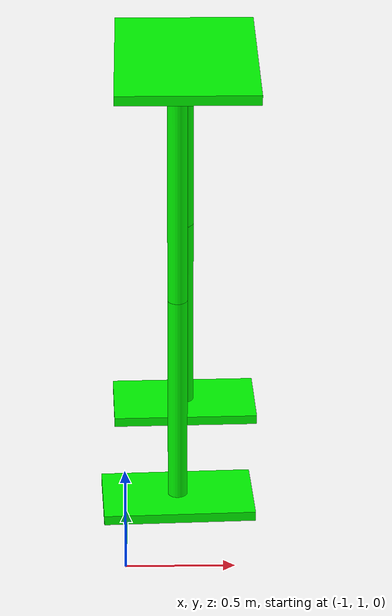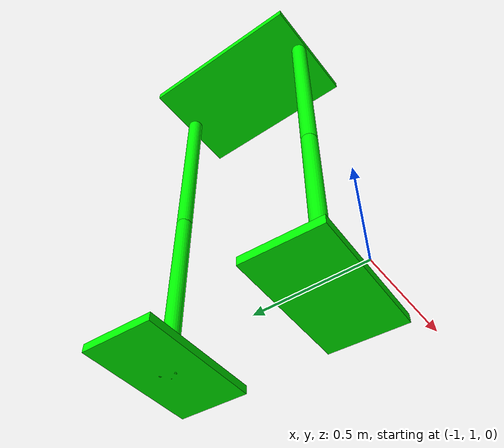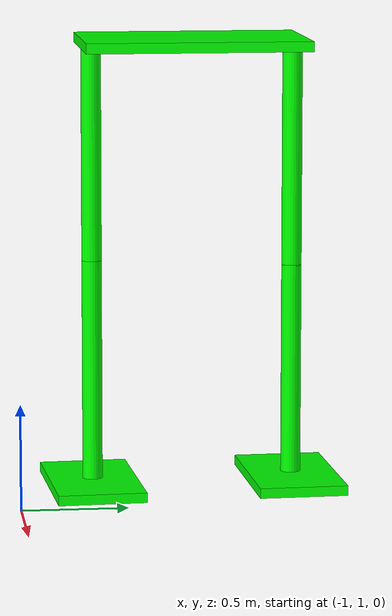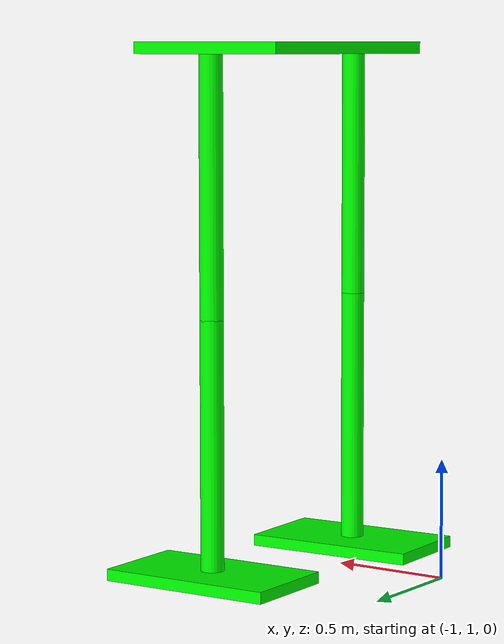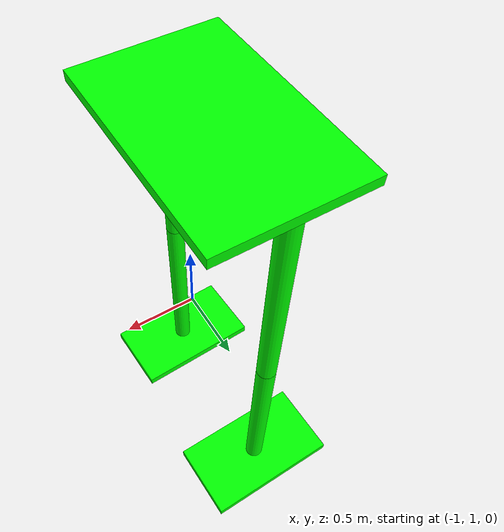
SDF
<?xml version='1.0'?>
<sdf version='1.6'>
  <model name='HumanoidRobot'>
    <model name='HumanoidRobot'>
      <link name='link_0'>
        <pose frame=''>0.019712 -0.002813 1.14058 0 -0 0</pose>
        <inertial>
          <mass>0.029622</mass>
          <inertia>
            <ixx>0.00247368</ixx>
            <ixy>0</ixy>
            <ixz>0</ixz>
            <iyy>0.00103721</iyy>
            <iyz>0</iyz>
            <izz>0.00350053</izz>
          </inertia>
          <pose frame=''>0 0 0 0 -0 0</pose>
        </inertial>
        <visual name='visual'>
          <pose frame=''>0 0 0 0 -0 0</pose>
          <geometry>
            <box>
              <size>0.64659 1 0.045816</size>
            </box>
          </geometry>
          <material>
            <lighting>1</lighting>
            <script>
              <uri>file://media/materials/scripts/gazebo.material</uri>
              <name>Gazebo/Grey</name>
            </script>
            <shader type='pixel'/>
            <ambient>0 1 0 1</ambient>
            <diffuse>0 1 0 1</diffuse>
            <specular>0.01 0.01 0.01 1</specular>
            <emissive>0 0 0 1</emissive>
          </material>
          <transparency>0</transparency>
          <cast_shadows>1</cast_shadows>
        </visual>
        <collision name='collision'>
          <laser_retro>0</laser_retro>
          <max_contacts>10</max_contacts>
          <pose frame=''>0 0 0 0 -0 0</pose>
          <geometry>
            <box>
              <size>0.64659 1 0.045816</size>
            </box>
          </geometry>
          <surface>
            <friction>
              <ode>
                <mu>1</mu>
                <mu2>1</mu2>
                <fdir1>0 0 0</fdir1>
                <slip1>0</slip1>
                <slip2>0</slip2>
              </ode>
              <torsional>
                <coefficient>1</coefficient>
                <patch_radius>0</patch_radius>
                <surface_radius>0</surface_radius>
                <use_patch_radius>1</use_patch_radius>
                <ode>
                  <slip>0</slip>
                </ode>
              </torsional>
            </friction>
            <bounce>
              <restitution_coefficient>0</restitution_coefficient>
              <threshold>1e+06</threshold>
            </bounce>
            <contact>
              <collide_without_contact>0</collide_without_contact>
              <collide_without_contact_bitmask>1</collide_without_contact_bitmask>
              <collide_bitmask>1</collide_bitmask>
              <ode>
                <soft_cfm>0</soft_cfm>
                <soft_erp>0.2</soft_erp>
                <kp>1e+13</kp>
                <kd>1</kd>
                <max_vel>0.01</max_vel>
                <min_depth>0</min_depth>
              </ode>
              <bullet>
                <split_impulse>1</split_impulse>
                <split_impulse_penetration_threshold>-0.01</split_impulse_penetration_threshold>
                <soft_cfm>0</soft_cfm>
                <soft_erp>0.2</soft_erp>
                <kp>1e+13</kp>
                <kd>1</kd>
              </bullet>
            </contact>
          </surface>
        </collision>
      </link>
      <link name='link_1'>
        <pose frame=''>-0.026288 -0.45114 0.657015 0 -0 0</pose>
        <inertial>
          <mass>0.00813444</mass>
          <inertia>
            <ixx>0.00068201</ixx>
            <ixy>0</ixy>
            <ixz>0</ixz>
            <iyy>0.00068201</iyy>
            <iyz>0</iyz>
            <izz>8.28e-06</izz>
          </inertia>
          <pose frame=''>0 0 0 0 -0 0</pose>
        </inertial>
        <gravity>1</gravity>
        <self_collide>0</self_collide>
        <kinematic>0</kinematic>
        <visual name='visual'>
          <pose frame=''>0 0 0 0 -0 0</pose>
          <geometry>
            <cylinder>
              <radius>0.0451095</radius>
              <length>1</length>
            </cylinder>
          </geometry>
          <material>
            <lighting>1</lighting>
            <script>
              <uri>file://media/materials/scripts/gazebo.material</uri>
              <name>Gazebo/Grey</name>
            </script>
            <shader type='pixel'>
              <normal_map>__default__</normal_map>
            </shader>
            <ambient>0 1 0 1</ambient>
            <diffuse>0 1 0 1</diffuse>
            <specular>0.01 0.01 0.01 1</specular>
            <emissive>0 0 0 1</emissive>
          </material>
          <transparency>0</transparency>
          <cast_shadows>1</cast_shadows>
        </visual>
        <collision name='collision'>
          <laser_retro>0</laser_retro>
          <max_contacts>10</max_contacts>
          <pose frame=''>0 0 0 0 -0 0</pose>
          <geometry>
            <cylinder>
              <radius>0.045109</radius>
              <length>1</length>
            </cylinder>
          </geometry>
          <surface>
            <friction>
              <ode>
                <mu>1</mu>
                <mu2>1</mu2>
                <fdir1>0 0 0</fdir1>
                <slip1>0</slip1>
                <slip2>0</slip2>
              </ode>
              <torsional>
                <coefficient>1</coefficient>
                <patch_radius>0</patch_radius>
                <surface_radius>0</surface_radius>
                <use_patch_radius>1</use_patch_radius>
                <ode>
                  <slip>0</slip>
                </ode>
              </torsional>
            </friction>
            <bounce>
              <restitution_coefficient>0</restitution_coefficient>
              <threshold>1e+06</threshold>
            </bounce>
            <contact>
              <collide_without_contact>0</collide_without_contact>
              <collide_without_contact_bitmask>1</collide_without_contact_bitmask>
              <collide_bitmask>1</collide_bitmask>
              <ode>
                <soft_cfm>0</soft_cfm>
                <soft_erp>0.2</soft_erp>
                <kp>1e+13</kp>
                <kd>1</kd>
                <max_vel>0.01</max_vel>
                <min_depth>0</min_depth>
              </ode>
              <bullet>
                <split_impulse>1</split_impulse>
                <split_impulse_penetration_threshold>-0.01</split_impulse_penetration_threshold>
                <soft_cfm>0</soft_cfm>
                <soft_erp>0.2</soft_erp>
                <kp>1e+13</kp>
                <kd>1</kd>
              </bullet>
            </contact>
          </surface>
        </collision>
      </link>
      <link name='link_1_clone'>
        <pose frame=''>0.019712 0.452077 0.626646 0 -0 0</pose>
        <inertial>
          <mass>0.00813444</mass>
          <inertia>
            <ixx>0.000682008</ixx>
            <ixy>0</ixy>
            <ixz>0</ixz>
            <iyy>0.000682008</iyy>
            <iyz>0</iyz>
            <izz>8.27625e-06</izz>
          </inertia>
          <pose frame=''>0 0 0 0 -0 0</pose>
        </inertial>
        <visual name='visual'>
          <pose frame=''>0 0 0 0 -0 0</pose>
          <geometry>
            <cylinder>
              <radius>0.0451095</radius>
              <length>1</length>
            </cylinder>
          </geometry>
          <material>
            <lighting>1</lighting>
            <script>
              <uri>file://media/materials/scripts/gazebo.material</uri>
              <name>Gazebo/Grey</name>
            </script>
            <shader type='pixel'/>
            <ambient>0 1 0 1</ambient>
            <diffuse>0 1 0 1</diffuse>
            <specular>0.01 0.01 0.01 1</specular>
            <emissive>0 0 0 1</emissive>
          </material>
          <transparency>0</transparency>
          <cast_shadows>1</cast_shadows>
        </visual>
        <collision name='collision'>
          <laser_retro>0</laser_retro>
          <max_contacts>10</max_contacts>
          <pose frame=''>0 0 0 0 -0 0</pose>
          <geometry>
            <cylinder>
              <radius>0.045109</radius>
              <length>1</length>
            </cylinder>
          </geometry>
          <surface>
            <friction>
              <ode>
                <mu>1</mu>
                <mu2>1</mu2>
                <fdir1>0 0 0</fdir1>
                <slip1>0</slip1>
                <slip2>0</slip2>
              </ode>
              <torsional>
                <coefficient>1</coefficient>
                <patch_radius>0</patch_radius>
                <surface_radius>0</surface_radius>
                <use_patch_radius>1</use_patch_radius>
                <ode>
                  <slip>0</slip>
                </ode>
              </torsional>
            </friction>
            <bounce>
              <restitution_coefficient>0</restitution_coefficient>
              <threshold>1e+06</threshold>
            </bounce>
            <contact>
              <collide_without_contact>0</collide_without_contact>
              <collide_without_contact_bitmask>1</collide_without_contact_bitmask>
              <collide_bitmask>1</collide_bitmask>
              <ode>
                <soft_cfm>0</soft_cfm>
                <soft_erp>0.2</soft_erp>
                <kp>1e+13</kp>
                <kd>1</kd>
                <max_vel>0.01</max_vel>
                <min_depth>0</min_depth>
              </ode>
              <bullet>
                <split_impulse>1</split_impulse>
                <split_impulse_penetration_threshold>-0.01</split_impulse_penetration_threshold>
                <soft_cfm>0</soft_cfm>
                <soft_erp>0.2</soft_erp>
                <kp>1e+13</kp>
                <kd>1</kd>
              </bullet>
            </contact>
          </surface>
        </collision>
      </link>
      <link name='link_1_clone_0'>
        <pose frame=''>0.019712 0.452077 -0.369133 0 -0 0</pose>
        <inertial>
          <mass>0.00813444</mass>
          <inertia>
            <ixx>0.00068201</ixx>
            <ixy>0</ixy>
            <ixz>0</ixz>
            <iyy>0.00068201</iyy>
            <iyz>0</iyz>
            <izz>8.28e-06</izz>
          </inertia>
          <pose frame=''>0 0 0 0 -0 0</pose>
        </inertial>
        <self_collide>0</self_collide>
        <kinematic>0</kinematic>
        <visual name='visual'>
          <pose frame=''>0 0 0 0 -0 0</pose>
          <geometry>
            <cylinder>
              <radius>0.0451095</radius>
              <length>1</length>
            </cylinder>
          </geometry>
          <material>
            <lighting>1</lighting>
            <script>
              <uri>file://media/materials/scripts/gazebo.material</uri>
              <name>Gazebo/Grey</name>
            </script>
            <shader type='pixel'>
              <normal_map>__default__</normal_map>
            </shader>
            <ambient>0 1 0 1</ambient>
            <diffuse>0 1 0 1</diffuse>
            <specular>0.01 0.01 0.01 1</specular>
            <emissive>0 0 0 1</emissive>
          </material>
          <transparency>0</transparency>
          <cast_shadows>1</cast_shadows>
        </visual>
        <collision name='collision'>
          <laser_retro>0</laser_retro>
          <max_contacts>10</max_contacts>
          <pose frame=''>0 0 0 0 -0 0</pose>
          <geometry>
            <cylinder>
              <radius>0.045109</radius>
              <length>1</length>
            </cylinder>
          </geometry>
          <surface>
            <friction>
              <ode>
                <mu>1</mu>
                <mu2>1</mu2>
                <fdir1>0 0 0</fdir1>
                <slip1>0</slip1>
                <slip2>0</slip2>
              </ode>
              <torsional>
                <coefficient>1</coefficient>
                <patch_radius>0</patch_radius>
                <surface_radius>0</surface_radius>
                <use_patch_radius>1</use_patch_radius>
                <ode>
                  <slip>0</slip>
                </ode>
              </torsional>
            </friction>
            <bounce>
              <restitution_coefficient>0</restitution_coefficient>
              <threshold>1e+06</threshold>
            </bounce>
            <contact>
              <collide_without_contact>0</collide_without_contact>
              <collide_without_contact_bitmask>1</collide_without_contact_bitmask>
              <collide_bitmask>1</collide_bitmask>
              <ode>
                <soft_cfm>0</soft_cfm>
                <soft_erp>0.2</soft_erp>
                <kp>1e+13</kp>
                <kd>1</kd>
                <max_vel>0.01</max_vel>
                <min_depth>0</min_depth>
              </ode>
              <bullet>
                <split_impulse>1</split_impulse>
                <split_impulse_penetration_threshold>-0.01</split_impulse_penetration_threshold>
                <soft_cfm>0</soft_cfm>
                <soft_erp>0.2</soft_erp>
                <kp>1e+13</kp>
                <kd>1</kd>
              </bullet>
            </contact>
          </surface>
        </collision>
      </link>
      <link name='link_1_clone_0_clone'>
        <pose frame=''>-0.026288 -0.45114 -0.342985 0 -0 0</pose>
        <inertial>
          <mass>0.00813444</mass>
          <inertia>
            <ixx>0.00068201</ixx>
            <ixy>0</ixy>
            <ixz>0</ixz>
            <iyy>0.00068201</iyy>
            <iyz>0</iyz>
            <izz>8.28e-06</izz>
          </inertia>
          <pose frame=''>0 0 0 0 -0 0</pose>
        </inertial>
        <self_collide>0</self_collide>
        <kinematic>0</kinematic>
        <visual name='visual'>
          <pose frame=''>0 0 0 0 -0 0</pose>
          <geometry>
            <cylinder>
              <radius>0.0451095</radius>
              <length>1</length>
            </cylinder>
          </geometry>
          <material>
            <lighting>1</lighting>
            <script>
              <uri>file://media/materials/scripts/gazebo.material</uri>
              <name>Gazebo/Grey</name>
            </script>
            <shader type='pixel'>
              <normal_map>__default__</normal_map>
            </shader>
            <ambient>0 1 0 1</ambient>
            <diffuse>0 1 0 1</diffuse>
            <specular>0.01 0.01 0.01 1</specular>
            <emissive>0 0 0 1</emissive>
          </material>
          <transparency>0</transparency>
          <cast_shadows>1</cast_shadows>
        </visual>
        <collision name='collision'>
          <laser_retro>0</laser_retro>
          <max_contacts>10</max_contacts>
          <pose frame=''>0 0 0 0 -0 0</pose>
          <geometry>
            <cylinder>
              <radius>0.045109</radius>
              <length>1</length>
            </cylinder>
          </geometry>
          <surface>
            <friction>
              <ode>
                <mu>1</mu>
                <mu2>1</mu2>
                <fdir1>0 0 0</fdir1>
                <slip1>0</slip1>
                <slip2>0</slip2>
              </ode>
              <torsional>
                <coefficient>1</coefficient>
                <patch_radius>0</patch_radius>
                <surface_radius>0</surface_radius>
                <use_patch_radius>1</use_patch_radius>
                <ode>
                  <slip>0</slip>
                </ode>
              </torsional>
            </friction>
            <bounce>
              <restitution_coefficient>0</restitution_coefficient>
              <threshold>1e+06</threshold>
            </bounce>
            <contact>
              <collide_without_contact>0</collide_without_contact>
              <collide_without_contact_bitmask>1</collide_without_contact_bitmask>
              <collide_bitmask>1</collide_bitmask>
              <ode>
                <soft_cfm>0</soft_cfm>
                <soft_erp>0.2</soft_erp>
                <kp>1e+13</kp>
                <kd>1</kd>
                <max_vel>0.01</max_vel>
                <min_depth>0</min_depth>
              </ode>
              <bullet>
                <split_impulse>1</split_impulse>
                <split_impulse_penetration_threshold>-0.01</split_impulse_penetration_threshold>
                <soft_cfm>0</soft_cfm>
                <soft_erp>0.2</soft_erp>
                <kp>1e+13</kp>
                <kd>1</kd>
              </bullet>
            </contact>
          </surface>
        </collision>
      </link>
      <link name='link_2'>
        <pose frame=''>0.019713 0.452077 -0.846646 0 0 -1.54386</pose>
        <inertial>
          <mass>0.0125002</mass>
          <inertia>
            <ixx>0.000510703</ixx>
            <ixy>0</ixy>
            <ixz>0</ixz>
            <iyy>0.000166892</iyy>
            <iyz>0</iyz>
            <izz>0.000673381</izz>
          </inertia>
          <pose frame=''>0 0 0 0 -0 0</pose>
        </inertial>
        <visual name='visual'>
          <pose frame=''>0 0 0 0 -0 0</pose>
          <geometry>
            <box>
              <size>0.397733 0.698746 0.044974</size>
            </box>
          </geometry>
          <material>
            <lighting>1</lighting>
            <script>
              <uri>file://media/materials/scripts/gazebo.material</uri>
              <name>Gazebo/Grey</name>
            </script>
            <shader type='pixel'/>
            <ambient>0 1 0 1</ambient>
            <diffuse>0 1 0 1</diffuse>
            <specular>0.01 0.01 0.01 1</specular>
            <emissive>0 0 0 1</emissive>
          </material>
          <transparency>0</transparency>
          <cast_shadows>1</cast_shadows>
        </visual>
        <collision name='collision'>
          <laser_retro>0</laser_retro>
          <max_contacts>10</max_contacts>
          <pose frame=''>0 0 0 0 -0 0</pose>
          <geometry>
            <box>
              <size>0.397733 0.698746 0.044974</size>
            </box>
          </geometry>
          <surface>
            <friction>
              <ode>
                <mu>1</mu>
                <mu2>1</mu2>
                <fdir1>0 0 0</fdir1>
                <slip1>0</slip1>
                <slip2>0</slip2>
              </ode>
              <torsional>
                <coefficient>1</coefficient>
                <patch_radius>0</patch_radius>
                <surface_radius>0</surface_radius>
                <use_patch_radius>1</use_patch_radius>
                <ode>
                  <slip>0</slip>
                </ode>
              </torsional>
            </friction>
            <bounce>
              <restitution_coefficient>0</restitution_coefficient>
              <threshold>1e+06</threshold>
            </bounce>
            <contact>
              <collide_without_contact>0</collide_without_contact>
              <collide_without_contact_bitmask>1</collide_without_contact_bitmask>
              <collide_bitmask>1</collide_bitmask>
              <ode>
                <soft_cfm>0</soft_cfm>
                <soft_erp>0.2</soft_erp>
                <kp>1e+13</kp>
                <kd>1</kd>
                <max_vel>0.01</max_vel>
                <min_depth>0</min_depth>
              </ode>
              <bullet>
                <split_impulse>1</split_impulse>
                <split_impulse_penetration_threshold>-0.01</split_impulse_penetration_threshold>
                <soft_cfm>0</soft_cfm>
                <soft_erp>0.2</soft_erp>
                <kp>1e+13</kp>
                <kd>1</kd>
              </bullet>
            </contact>
          </surface>
        </collision>
      </link>
      <link name='link_2_clone'>
        <pose frame=''>-0.026288 -0.45114 -0.865472 0 0 -1.52798</pose>
        <inertial>
          <mass>0.0125002</mass>
          <inertia>
            <ixx>0.000510703</ixx>
            <ixy>0</ixy>
            <ixz>0</ixz>
            <iyy>0.000166892</iyy>
            <iyz>0</iyz>
            <izz>0.000673381</izz>
          </inertia>
          <pose frame=''>0 0 0 0 -0 0</pose>
        </inertial>
        <visual name='visual'>
          <pose frame=''>0 0 0 0 -0 0</pose>
          <geometry>
            <box>
              <size>0.397733 0.698746 0.044974</size>
            </box>
          </geometry>
          <material>
            <lighting>1</lighting>
            <script>
              <uri>file://media/materials/scripts/gazebo.material</uri>
              <name>Gazebo/Grey</name>
            </script>
            <shader type='pixel'/>
            <ambient>0 1 0 1</ambient>
            <diffuse>0 1 0 1</diffuse>
            <specular>0.01 0.01 0.01 1</specular>
            <emissive>0 0 0 1</emissive>
          </material>
          <transparency>0</transparency>
          <cast_shadows>1</cast_shadows>
        </visual>
        <collision name='collision'>
          <laser_retro>0</laser_retro>
          <max_contacts>10</max_contacts>
          <pose frame=''>0 0 0 0 -0 0</pose>
          <geometry>
            <box>
              <size>0.397733 0.698746 0.044974</size>
            </box>
          </geometry>
          <surface>
            <friction>
              <ode>
                <mu>1</mu>
                <mu2>1</mu2>
                <fdir1>0 0 0</fdir1>
                <slip1>0</slip1>
                <slip2>0</slip2>
              </ode>
              <torsional>
                <coefficient>1</coefficient>
                <patch_radius>0</patch_radius>
                <surface_radius>0</surface_radius>
                <use_patch_radius>1</use_patch_radius>
                <ode>
                  <slip>0</slip>
                </ode>
              </torsional>
            </friction>
            <bounce>
              <restitution_coefficient>0</restitution_coefficient>
              <threshold>1e+06</threshold>
            </bounce>
            <contact>
              <collide_without_contact>0</collide_without_contact>
              <collide_without_contact_bitmask>1</collide_without_contact_bitmask>
              <collide_bitmask>1</collide_bitmask>
              <ode>
                <soft_cfm>0</soft_cfm>
                <soft_erp>0.2</soft_erp>
                <kp>1e+13</kp>
                <kd>1</kd>
                <max_vel>0.01</max_vel>
                <min_depth>0</min_depth>
              </ode>
              <bullet>
                <split_impulse>1</split_impulse>
                <split_impulse_penetration_threshold>-0.01</split_impulse_penetration_threshold>
                <soft_cfm>0</soft_cfm>
                <soft_erp>0.2</soft_erp>
                <kp>1e+13</kp>
                <kd>1</kd>
              </bullet>
            </contact>
          </surface>
        </collision>
      </link>
      <joint name='link_0_JOINT_0' type='prismatic'>
        <parent>link_0</parent>
        <child>link_1</child>
        <pose frame=''>0 0 0 0 -0 0</pose>
        <axis>
          <xyz>1 0 0</xyz>
          <use_parent_model_frame>0</use_parent_model_frame>
          <limit>
            <lower>-1.79769e+308</lower>
            <upper>1.79769e+308</upper>
            <effort>-1</effort>
            <velocity>-1</velocity>
          </limit>
          <dynamics>
            <spring_reference>0</spring_reference>
            <spring_stiffness>0</spring_stiffness>
            <damping>0</damping>
            <friction>0</friction>
          </dynamics>
        </axis>
        <physics>
          <ode>
            <limit>
              <cfm>0</cfm>
              <erp>0.2</erp>
            </limit>
            <suspension>
              <cfm>0</cfm>
              <erp>0.2</erp>
            </suspension>
          </ode>
        </physics>
      </joint>
      <joint name='link_0_JOINT_1' type='revolute'>
        <parent>link_0</parent>
        <child>link_1_clone</child>
        <pose frame=''>0 0 0 0 -0 0</pose>
        <axis>
          <xyz>1 0 0</xyz>
          <use_parent_model_frame>0</use_parent_model_frame>
          <limit>
            <lower>-1.79769e+308</lower>
            <upper>1.79769e+308</upper>
            <effort>-1</effort>
            <velocity>-1</velocity>
          </limit>
          <dynamics>
            <spring_reference>0</spring_reference>
            <spring_stiffness>0</spring_stiffness>
            <damping>0</damping>
          </dynamics>
        </axis>
        <physics>
          <ode>
            <limit>
              <cfm>0</cfm>
              <erp>0.2</erp>
            </limit>
            <suspension>
              <cfm>0</cfm>
              <erp>0.2</erp>
            </suspension>
          </ode>
        </physics>
      </joint>
      <joint name='link_0_JOINT_2' type='prismatic'>
        <parent>link_0</parent>
        <child>link_1</child>
        <pose frame=''>0 0 0 0 -0 0</pose>
        <axis>
          <xyz>1 0 0</xyz>
          <use_parent_model_frame>0</use_parent_model_frame>
          <limit>
            <lower>-1.79769e+308</lower>
            <upper>1.79769e+308</upper>
            <effort>-1</effort>
            <velocity>-1</velocity>
          </limit>
          <dynamics>
            <spring_reference>0</spring_reference>
            <spring_stiffness>0</spring_stiffness>
            <damping>0</damping>
          </dynamics>
        </axis>
        <physics>
          <ode>
            <limit>
              <cfm>0</cfm>
              <erp>0.2</erp>
            </limit>
            <suspension>
              <cfm>0</cfm>
              <erp>0.2</erp>
            </suspension>
          </ode>
        </physics>
      </joint>
      <joint name='link_1_JOINT_4' type='revolute'>
        <parent>link_1</parent>
        <child>link_1_clone_0_clone</child>
        <pose frame=''>0 0 0 0 -0 0</pose>
        <axis>
          <xyz>1 0 0</xyz>
          <use_parent_model_frame>0</use_parent_model_frame>
          <limit>
            <lower>-1.79769e+308</lower>
            <upper>1.79769e+308</upper>
            <effort>-1</effort>
            <velocity>-1</velocity>
          </limit>
          <dynamics>
            <spring_reference>0</spring_reference>
            <spring_stiffness>0</spring_stiffness>
            <damping>0</damping>
          </dynamics>
        </axis>
        <physics>
          <ode>
            <limit>
              <cfm>0</cfm>
              <erp>0.2</erp>
            </limit>
            <suspension>
              <cfm>0</cfm>
              <erp>0.2</erp>
            </suspension>
          </ode>
        </physics>
      </joint>
      <joint name='link_1_JOINT_5' type='prismatic'>
        <parent>link_1</parent>
        <child>link_1_clone_0_clone</child>
        <pose frame=''>0 0 0 0 -0 0</pose>
        <axis>
          <xyz>1 0 0</xyz>
          <use_parent_model_frame>0</use_parent_model_frame>
          <limit>
            <lower>-1.79769e+308</lower>
            <upper>1.79769e+308</upper>
            <effort>-1</effort>
            <velocity>-1</velocity>
          </limit>
          <dynamics>
            <spring_reference>0</spring_reference>
            <spring_stiffness>0</spring_stiffness>
            <damping>0</damping>
          </dynamics>
        </axis>
        <physics>
          <ode>
            <limit>
              <cfm>0</cfm>
              <erp>0.2</erp>
            </limit>
            <suspension>
              <cfm>0</cfm>
              <erp>0.2</erp>
            </suspension>
          </ode>
        </physics>
      </joint>
      <joint name='link_1_JOINT_6' type='prismatic'>
        <parent>link_1</parent>
        <child>link_1_clone_0_clone</child>
        <pose frame=''>0 0 0 0 -0 0</pose>
        <axis>
          <xyz>0 0 1</xyz>
          <use_parent_model_frame>0</use_parent_model_frame>
          <limit>
            <lower>-1.79769e+308</lower>
            <upper>1.79769e+308</upper>
            <effort>-1</effort>
            <velocity>-1</velocity>
          </limit>
          <dynamics>
            <spring_reference>0</spring_reference>
            <spring_stiffness>0</spring_stiffness>
            <damping>0</damping>
          </dynamics>
        </axis>
        <physics>
          <ode>
            <limit>
              <cfm>0</cfm>
              <erp>0.2</erp>
            </limit>
            <suspension>
              <cfm>0</cfm>
              <erp>0.2</erp>
            </suspension>
          </ode>
        </physics>
      </joint>
      <joint name='link_1_JOINT_7' type='prismatic'>
        <parent>link_1</parent>
        <child>link_1_clone_0_clone</child>
        <pose frame=''>0 0 0 0 -0 0</pose>
        <axis>
          <xyz>0 0 1</xyz>
          <use_parent_model_frame>0</use_parent_model_frame>
          <limit>
            <lower>-1.79769e+308</lower>
            <upper>1.79769e+308</upper>
            <effort>-1</effort>
            <velocity>-1</velocity>
          </limit>
          <dynamics>
            <spring_reference>0</spring_reference>
            <spring_stiffness>0</spring_stiffness>
            <damping>0</damping>
          </dynamics>
        </axis>
        <physics>
          <ode>
            <limit>
              <cfm>0</cfm>
              <erp>0.2</erp>
            </limit>
            <suspension>
              <cfm>0</cfm>
              <erp>0.2</erp>
            </suspension>
          </ode>
        </physics>
      </joint>
      <joint name='link_1_JOINT_8' type='prismatic'>
        <parent>link_1</parent>
        <child>link_1_clone_0_clone</child>
        <pose frame=''>0 0 0 0 -0 0</pose>
        <axis>
          <xyz>0 0 1</xyz>
          <use_parent_model_frame>0</use_parent_model_frame>
          <limit>
            <lower>-1.79769e+308</lower>
            <upper>1.79769e+308</upper>
            <effort>-1</effort>
            <velocity>-1</velocity>
          </limit>
          <dynamics>
            <spring_reference>0</spring_reference>
            <spring_stiffness>0</spring_stiffness>
            <damping>0</damping>
          </dynamics>
        </axis>
        <physics>
          <ode>
            <limit>
              <cfm>0</cfm>
              <erp>0.2</erp>
            </limit>
            <suspension>
              <cfm>0</cfm>
              <erp>0.2</erp>
            </suspension>
          </ode>
        </physics>
      </joint>
      <joint name='link_1_clone_0_JOINT_13' type='fixed'>
        <parent>link_1_clone_0</parent>
        <child>link_2</child>
        <pose frame=''>0 0 0 0 -0 0</pose>
        <physics>
          <ode>
            <limit>
              <cfm>0</cfm>
              <erp>0.2</erp>
            </limit>
            <suspension>
              <cfm>0</cfm>
              <erp>0.2</erp>
            </suspension>
          </ode>
        </physics>
      </joint>
      <joint name='link_1_clone_0_clone_JOINT_10' type='fixed'>
        <parent>link_1_clone_0_clone</parent>
        <child>link_2_clone</child>
        <pose frame=''>0 0 0 0 -0 0</pose>
        <physics>
          <ode>
            <limit>
              <cfm>0</cfm>
              <erp>0.2</erp>
            </limit>
            <suspension>
              <cfm>0</cfm>
              <erp>0.2</erp>
            </suspension>
          </ode>
        </physics>
      </joint>
      <joint name='link_1_clone_0_clone_JOINT_11' type='revolute'>
        <parent>link_1_clone_0_clone</parent>
        <child>link_2_clone</child>
        <pose frame=''>0 0 0 0 -0 0</pose>
        <axis>
          <xyz>1 0 0</xyz>
          <use_parent_model_frame>0</use_parent_model_frame>
          <limit>
            <lower>-1.79769e+308</lower>
            <upper>1.79769e+308</upper>
            <effort>-1</effort>
            <velocity>-1</velocity>
          </limit>
          <dynamics>
            <spring_reference>0</spring_reference>
            <spring_stiffness>0</spring_stiffness>
            <damping>0</damping>
          </dynamics>
        </axis>
        <physics>
          <ode>
            <limit>
              <cfm>0</cfm>
              <erp>0.2</erp>
            </limit>
            <suspension>
              <cfm>0</cfm>
              <erp>0.2</erp>
            </suspension>
          </ode>
        </physics>
      </joint>
      <joint name='link_1_clone_0_clone_JOINT_12' type='fixed'>
        <parent>link_1_clone_0_clone</parent>
        <child>link_2_clone</child>
        <pose frame=''>0 0 0 0 -0 0</pose>
        <physics>
          <ode>
            <limit>
              <cfm>0</cfm>
              <erp>0.2</erp>
            </limit>
            <suspension>
              <cfm>0</cfm>
              <erp>0.2</erp>
            </suspension>
          </ode>
        </physics>
      </joint>
      <joint name='link_1_clone_JOINT_3' type='prismatic'>
        <parent>link_1_clone</parent>
        <child>link_1_clone_0</child>
        <pose frame=''>0 0 0 0 -0 0</pose>
        <axis>
          <xyz>0.99 0 0</xyz>
          <use_parent_model_frame>0</use_parent_model_frame>
          <limit>
            <lower>-1.79769e+308</lower>
            <upper>1.79769e+308</upper>
            <effort>-1</effort>
            <velocity>-1</velocity>
          </limit>
          <dynamics>
            <spring_reference>0</spring_reference>
            <spring_stiffness>0</spring_stiffness>
            <damping>0</damping>
          </dynamics>
        </axis>
        <physics>
          <ode>
            <limit>
              <cfm>0</cfm>
              <erp>0.2</erp>
            </limit>
            <suspension>
              <cfm>0</cfm>
              <erp>0.2</erp>
            </suspension>
          </ode>
        </physics>
      </joint>
      <static>0</static>
      <allow_auto_disable>1</allow_auto_disable>
      <pose frame=''>-0.731591 1.76116 1.05066 0 -0 0</pose>
    </model>
    <joint name='link_0_JOINT_0' type='prismatic'>
      <parent>HumanoidRobot::link_0</parent>
      <child>HumanoidRobot::link_1_clone</child>
      <pose frame=''>0 0 0 0 -0 0</pose>
      <axis>
        <xyz>0 0 1</xyz>
        <use_parent_model_frame>0</use_parent_model_frame>
        <limit>
          <lower>-1.79769e+308</lower>
          <upper>1.79769e+308</upper>
          <effort>-1</effort>
          <velocity>-1</velocity>
        </limit>
        <dynamics>
          <spring_reference>0</spring_reference>
          <spring_stiffness>0</spring_stiffness>
          <damping>0</damping>
          <friction>0</friction>
        </dynamics>
      </axis>
      <physics>
        <ode>
          <limit>
            <cfm>0</cfm>
            <erp>0.2</erp>
          </limit>
          <suspension>
            <cfm>0</cfm>
            <erp>0.2</erp>
          </suspension>
        </ode>
      </physics>
    </joint>
    <joint name='link_0_JOINT_1' type='prismatic'>
      <parent>HumanoidRobot::link_0</parent>
      <child>HumanoidRobot::link_1_clone</child>
      <pose frame=''>0 0 0 0 -0 0</pose>
      <axis>
        <xyz>0 1 0</xyz>
        <use_parent_model_frame>0</use_parent_model_frame>
        <limit>
          <lower>-1.79769e+308</lower>
          <upper>1.79769e+308</upper>
          <effort>-1</effort>
          <velocity>-1</velocity>
        </limit>
        <dynamics>
          <spring_reference>0</spring_reference>
          <spring_stiffness>0</spring_stiffness>
          <damping>0</damping>
        </dynamics>
      </axis>
      <physics>
        <ode>
          <limit>
            <cfm>0</cfm>
            <erp>0.2</erp>
          </limit>
          <suspension>
            <cfm>0</cfm>
            <erp>0.2</erp>
          </suspension>
        </ode>
      </physics>
    </joint>
    <joint name='link_0_JOINT_2' type='prismatic'>
      <parent>HumanoidRobot::link_0</parent>
      <child>HumanoidRobot::link_1</child>
      <pose frame=''>0 0 0 0 -0 0</pose>
      <axis>
        <xyz>0 1 0</xyz>
        <use_parent_model_frame>0</use_parent_model_frame>
        <limit>
          <lower>-1.79769e+308</lower>
          <upper>1.79769e+308</upper>
          <effort>-1</effort>
          <velocity>-1</velocity>
        </limit>
        <dynamics>
          <spring_reference>0</spring_reference>
          <spring_stiffness>0</spring_stiffness>
          <damping>0</damping>
          <friction>0</friction>
        </dynamics>
      </axis>
      <physics>
        <ode>
          <limit>
            <cfm>0</cfm>
            <erp>0.2</erp>
          </limit>
          <suspension>
            <cfm>0</cfm>
            <erp>0.2</erp>
          </suspension>
        </ode>
      </physics>
    </joint>
    <joint name='link_1_JOINT_4' type='prismatic'>
      <parent>HumanoidRobot::link_1</parent>
      <child>HumanoidRobot::link_1_clone_0_clone</child>
      <pose frame=''>0 0 0 0 -0 0</pose>
      <axis>
        <xyz>0 1 0</xyz>
        <use_parent_model_frame>0</use_parent_model_frame>
        <limit>
          <lower>-1.79769e+308</lower>
          <upper>1.79769e+308</upper>
          <effort>-1</effort>
          <velocity>-1</velocity>
        </limit>
        <dynamics>
          <spring_reference>0</spring_reference>
          <spring_stiffness>0</spring_stiffness>
          <damping>0</damping>
          <friction>0</friction>
        </dynamics>
      </axis>
      <physics>
        <ode>
          <limit>
            <cfm>0</cfm>
            <erp>0.2</erp>
          </limit>
          <suspension>
            <cfm>0</cfm>
            <erp>0.2</erp>
          </suspension>
        </ode>
      </physics>
    </joint>
    <joint name='link_1_clone_0_JOINT_5' type='fixed'>
      <parent>HumanoidRobot::link_1_clone_0</parent>
      <child>HumanoidRobot::link_2</child>
      <pose frame=''>0 0 0 0 -0 0</pose>
      <physics>
        <ode>
          <limit>
            <cfm>0</cfm>
            <erp>0.2</erp>
          </limit>
          <suspension>
            <cfm>0</cfm>
            <erp>0.2</erp>
          </suspension>
        </ode>
      </physics>
    </joint>
    <joint name='link_1_clone_0_clone_JOINT_6' type='fixed'>
      <parent>HumanoidRobot::link_1_clone_0_clone</parent>
      <child>HumanoidRobot::link_2_clone</child>
      <pose frame=''>0 0 0 0 -0 0</pose>
      <physics>
        <ode>
          <limit>
            <cfm>0</cfm>
            <erp>0.2</erp>
          </limit>
          <suspension>
            <cfm>0</cfm>
            <erp>0.2</erp>
          </suspension>
        </ode>
      </physics>
    </joint>
    <joint name='link_1_clone_JOINT_3' type='prismatic'>
      <parent>HumanoidRobot::link_1_clone</parent>
      <child>HumanoidRobot::link_1_clone_0</child>
      <pose frame=''>0 0 0 0 -0 0</pose>
      <axis>
        <xyz>0 1 0</xyz>
        <use_parent_model_frame>0</use_parent_model_frame>
        <limit>
          <lower>-1.79769e+308</lower>
          <upper>1.79769e+308</upper>
          <effort>-1</effort>
          <velocity>-1</velocity>
        </limit>
        <dynamics>
          <spring_reference>0</spring_reference>
          <spring_stiffness>0</spring_stiffness>
          <damping>0</damping>
          <friction>0</friction>
        </dynamics>
      </axis>
      <physics>
        <ode>
          <limit>
            <cfm>0</cfm>
            <erp>0.2</erp>
          </limit>
          <suspension>
            <cfm>0</cfm>
            <erp>0.2</erp>
          </suspension>
        </ode>
      </physics>
    </joint>
    <static>0</static>
    <allow_auto_disable>1</allow_auto_disable>
  </model>
</sdf>
